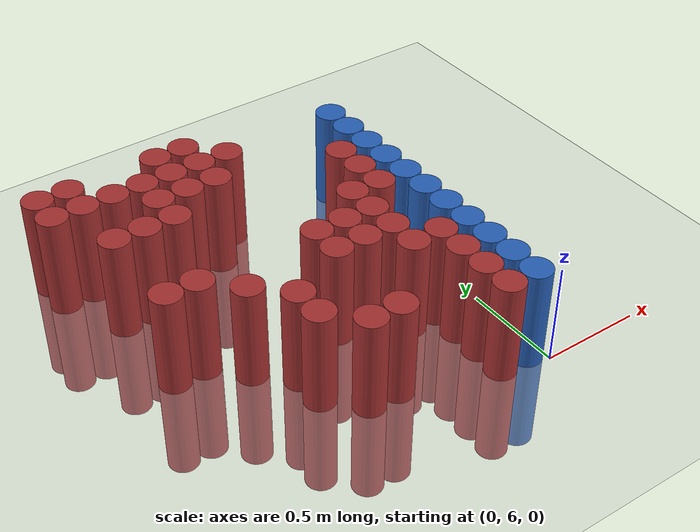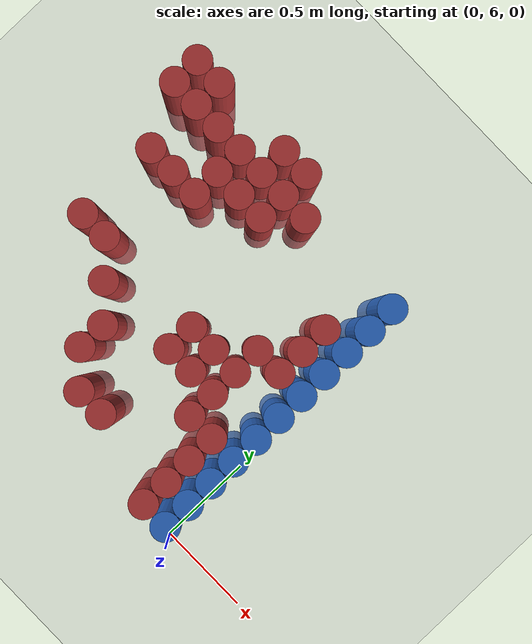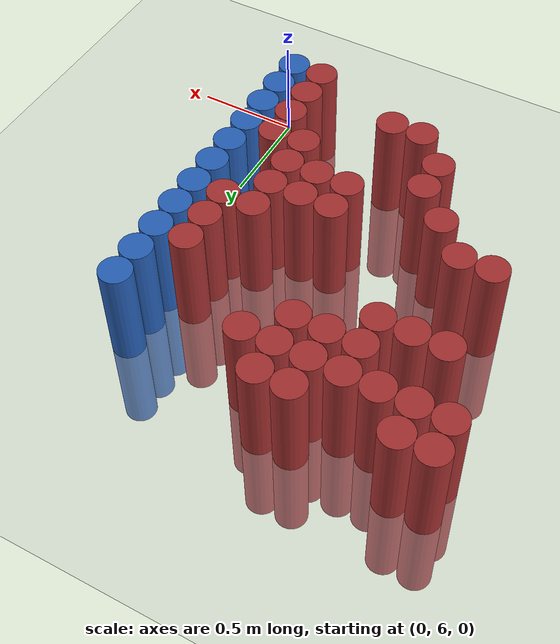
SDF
<sdf version="1.6">
 <world name="default">
  <model name="ground_plane">
   <static>1</static>
   <link name="link">
    <collision name="collision">
     <geometry><plane><normal>0 0 1</normal><size>100 100</size></plane></geometry>
     <surface><friction><ode><mu>100</mu><mu2>50</mu2></ode></friction></surface>
    </collision>
    <visual name="visual">
     <cast_shadows>0</cast_shadows>
     <geometry><plane><normal>0 0 1</normal><size>100 100</size></plane></geometry>
     <material>
      <script><uri>file://media/materials/scripts/gazebo.material</uri><name>Gazebo/Grey</name></script>
     </material>
    </visual>
   </link>
  </model>
  <model name="unit_cylinder_226">
   <static>1</static>
   <pose>-1.575000 7.575000 0.000000 0.000000 0.000000 0.000000</pose>
   <link name="link">
    <inertial>
     <mass>1</mass>
     <inertia><ixx>0.145833</ixx><ixy>0</ixy><ixz>0</ixz><iyy>0.145833</iyy><iyz>0</iyz><izz>0.125</izz></inertia>
    </inertial>
    <collision name="collision">
     <geometry><cylinder><radius>0.075000</radius><length>1</length></cylinder></geometry>
    </collision>
    <visual name="visual">
     <geometry><cylinder><radius>0.075000</radius><length>1</length></cylinder></geometry>
     <material>
      <ambient>0.648000 0.192000 0.192000 1</ambient>
      <diffuse>0.648000 0.192000 0.192000 1</diffuse>
     </material>
     <material>
      <script><name>Gazebo/Grey</name><uri>file://media/materials/scripts/gazebo.material</uri></script>
     </material>
    </visual>
   </link>
  </model>
  <model name="unit_cylinder_227">
   <static>1</static>
   <pose>-1.575000 7.725000 0.000000 0.000000 0.000000 0.000000</pose>
   <link name="link">
    <inertial>
     <mass>1</mass>
     <inertia><ixx>0.145833</ixx><ixy>0</ixy><ixz>0</ixz><iyy>0.145833</iyy><iyz>0</iyz><izz>0.125</izz></inertia>
    </inertial>
    <collision name="collision">
     <geometry><cylinder><radius>0.075000</radius><length>1</length></cylinder></geometry>
    </collision>
    <visual name="visual">
     <geometry><cylinder><radius>0.075000</radius><length>1</length></cylinder></geometry>
     <material>
      <ambient>0.648000 0.192000 0.192000 1</ambient>
      <diffuse>0.648000 0.192000 0.192000 1</diffuse>
     </material>
     <material>
      <script><name>Gazebo/Grey</name><uri>file://media/materials/scripts/gazebo.material</uri></script>
     </material>
    </visual>
   </link>
  </model>
  <model name="unit_cylinder_232">
   <static>1</static>
   <pose>-1.425000 6.825000 0.000000 0.000000 0.000000 0.000000</pose>
   <link name="link">
    <inertial>
     <mass>1</mass>
     <inertia><ixx>0.145833</ixx><ixy>0</ixy><ixz>0</ixz><iyy>0.145833</iyy><iyz>0</iyz><izz>0.125</izz></inertia>
    </inertial>
    <collision name="collision">
     <geometry><cylinder><radius>0.075000</radius><length>1</length></cylinder></geometry>
    </collision>
    <visual name="visual">
     <geometry><cylinder><radius>0.075000</radius><length>1</length></cylinder></geometry>
     <material>
      <ambient>0.648000 0.192000 0.192000 1</ambient>
      <diffuse>0.648000 0.192000 0.192000 1</diffuse>
     </material>
     <material>
      <script><name>Gazebo/Grey</name><uri>file://media/materials/scripts/gazebo.material</uri></script>
     </material>
    </visual>
   </link>
  </model>
  <model name="unit_cylinder_233">
   <static>1</static>
   <pose>-1.425000 7.275000 0.000000 0.000000 0.000000 0.000000</pose>
   <link name="link">
    <inertial>
     <mass>1</mass>
     <inertia><ixx>0.145833</ixx><ixy>0</ixy><ixz>0</ixz><iyy>0.145833</iyy><iyz>0</iyz><izz>0.125</izz></inertia>
    </inertial>
    <collision name="collision">
     <geometry><cylinder><radius>0.075000</radius><length>1</length></cylinder></geometry>
    </collision>
    <visual name="visual">
     <geometry><cylinder><radius>0.075000</radius><length>1</length></cylinder></geometry>
     <material>
      <ambient>0.648000 0.192000 0.192000 1</ambient>
      <diffuse>0.648000 0.192000 0.192000 1</diffuse>
     </material>
     <material>
      <script><name>Gazebo/Grey</name><uri>file://media/materials/scripts/gazebo.material</uri></script>
     </material>
    </visual>
   </link>
  </model>
  <model name="unit_cylinder_234">
   <static>1</static>
   <pose>-1.425000 7.575000 0.000000 0.000000 0.000000 0.000000</pose>
   <link name="link">
    <inertial>
     <mass>1</mass>
     <inertia><ixx>0.145833</ixx><ixy>0</ixy><ixz>0</ixz><iyy>0.145833</iyy><iyz>0</iyz><izz>0.125</izz></inertia>
    </inertial>
    <collision name="collision">
     <geometry><cylinder><radius>0.075000</radius><length>1</length></cylinder></geometry>
    </collision>
    <visual name="visual">
     <geometry><cylinder><radius>0.075000</radius><length>1</length></cylinder></geometry>
     <material>
      <ambient>0.648000 0.192000 0.192000 1</ambient>
      <diffuse>0.648000 0.192000 0.192000 1</diffuse>
     </material>
     <material>
      <script><name>Gazebo/Grey</name><uri>file://media/materials/scripts/gazebo.material</uri></script>
     </material>
    </visual>
   </link>
  </model>
  <model name="unit_cylinder_235">
   <static>1</static>
   <pose>-1.425000 7.725000 0.000000 0.000000 0.000000 0.000000</pose>
   <link name="link">
    <inertial>
     <mass>1</mass>
     <inertia><ixx>0.145833</ixx><ixy>0</ixy><ixz>0</ixz><iyy>0.145833</iyy><iyz>0</iyz><izz>0.125</izz></inertia>
    </inertial>
    <collision name="collision">
     <geometry><cylinder><radius>0.075000</radius><length>1</length></cylinder></geometry>
    </collision>
    <visual name="visual">
     <geometry><cylinder><radius>0.075000</radius><length>1</length></cylinder></geometry>
     <material>
      <ambient>0.648000 0.192000 0.192000 1</ambient>
      <diffuse>0.648000 0.192000 0.192000 1</diffuse>
     </material>
     <material>
      <script><name>Gazebo/Grey</name><uri>file://media/materials/scripts/gazebo.material</uri></script>
     </material>
    </visual>
   </link>
  </model>
  <model name="unit_cylinder_239">
   <static>1</static>
   <pose>-1.275000 6.825000 0.000000 0.000000 0.000000 0.000000</pose>
   <link name="link">
    <inertial>
     <mass>1</mass>
     <inertia><ixx>0.145833</ixx><ixy>0</ixy><ixz>0</ixz><iyy>0.145833</iyy><iyz>0</iyz><izz>0.125</izz></inertia>
    </inertial>
    <collision name="collision">
     <geometry><cylinder><radius>0.075000</radius><length>1</length></cylinder></geometry>
    </collision>
    <visual name="visual">
     <geometry><cylinder><radius>0.075000</radius><length>1</length></cylinder></geometry>
     <material>
      <ambient>0.648000 0.192000 0.192000 1</ambient>
      <diffuse>0.648000 0.192000 0.192000 1</diffuse>
     </material>
     <material>
      <script><name>Gazebo/Grey</name><uri>file://media/materials/scripts/gazebo.material</uri></script>
     </material>
    </visual>
   </link>
  </model>
  <model name="unit_cylinder_240">
   <static>1</static>
   <pose>-1.275000 7.275000 0.000000 0.000000 0.000000 0.000000</pose>
   <link name="link">
    <inertial>
     <mass>1</mass>
     <inertia><ixx>0.145833</ixx><ixy>0</ixy><ixz>0</ixz><iyy>0.145833</iyy><iyz>0</iyz><izz>0.125</izz></inertia>
    </inertial>
    <collision name="collision">
     <geometry><cylinder><radius>0.075000</radius><length>1</length></cylinder></geometry>
    </collision>
    <visual name="visual">
     <geometry><cylinder><radius>0.075000</radius><length>1</length></cylinder></geometry>
     <material>
      <ambient>0.648000 0.192000 0.192000 1</ambient>
      <diffuse>0.648000 0.192000 0.192000 1</diffuse>
     </material>
     <material>
      <script><name>Gazebo/Grey</name><uri>file://media/materials/scripts/gazebo.material</uri></script>
     </material>
    </visual>
   </link>
  </model>
  <model name="unit_cylinder_241">
   <static>1</static>
   <pose>-1.275000 7.575000 0.000000 0.000000 0.000000 0.000000</pose>
   <link name="link">
    <inertial>
     <mass>1</mass>
     <inertia><ixx>0.145833</ixx><ixy>0</ixy><ixz>0</ixz><iyy>0.145833</iyy><iyz>0</iyz><izz>0.125</izz></inertia>
    </inertial>
    <collision name="collision">
     <geometry><cylinder><radius>0.075000</radius><length>1</length></cylinder></geometry>
    </collision>
    <visual name="visual">
     <geometry><cylinder><radius>0.075000</radius><length>1</length></cylinder></geometry>
     <material>
      <ambient>0.648000 0.192000 0.192000 1</ambient>
      <diffuse>0.648000 0.192000 0.192000 1</diffuse>
     </material>
     <material>
      <script><name>Gazebo/Grey</name><uri>file://media/materials/scripts/gazebo.material</uri></script>
     </material>
    </visual>
   </link>
  </model>
  <model name="unit_cylinder_248">
   <static>1</static>
   <pose>-1.125000 6.675000 0.000000 0.000000 0.000000 0.000000</pose>
   <link name="link">
    <inertial>
     <mass>1</mass>
     <inertia><ixx>0.145833</ixx><ixy>0</ixy><ixz>0</ixz><iyy>0.145833</iyy><iyz>0</iyz><izz>0.125</izz></inertia>
    </inertial>
    <collision name="collision">
     <geometry><cylinder><radius>0.075000</radius><length>1</length></cylinder></geometry>
    </collision>
    <visual name="visual">
     <geometry><cylinder><radius>0.075000</radius><length>1</length></cylinder></geometry>
     <material>
      <ambient>0.648000 0.192000 0.192000 1</ambient>
      <diffuse>0.648000 0.192000 0.192000 1</diffuse>
     </material>
     <material>
      <script><name>Gazebo/Grey</name><uri>file://media/materials/scripts/gazebo.material</uri></script>
     </material>
    </visual>
   </link>
  </model>
  <model name="unit_cylinder_249">
   <static>1</static>
   <pose>-1.125000 7.275000 0.000000 0.000000 0.000000 0.000000</pose>
   <link name="link">
    <inertial>
     <mass>1</mass>
     <inertia><ixx>0.145833</ixx><ixy>0</ixy><ixz>0</ixz><iyy>0.145833</iyy><iyz>0</iyz><izz>0.125</izz></inertia>
    </inertial>
    <collision name="collision">
     <geometry><cylinder><radius>0.075000</radius><length>1</length></cylinder></geometry>
    </collision>
    <visual name="visual">
     <geometry><cylinder><radius>0.075000</radius><length>1</length></cylinder></geometry>
     <material>
      <ambient>0.648000 0.192000 0.192000 1</ambient>
      <diffuse>0.648000 0.192000 0.192000 1</diffuse>
     </material>
     <material>
      <script><name>Gazebo/Grey</name><uri>file://media/materials/scripts/gazebo.material</uri></script>
     </material>
    </visual>
   </link>
  </model>
  <model name="unit_cylinder_250">
   <static>1</static>
   <pose>-1.125000 7.425000 0.000000 0.000000 0.000000 0.000000</pose>
   <link name="link">
    <inertial>
     <mass>1</mass>
     <inertia><ixx>0.145833</ixx><ixy>0</ixy><ixz>0</ixz><iyy>0.145833</iyy><iyz>0</iyz><izz>0.125</izz></inertia>
    </inertial>
    <collision name="collision">
     <geometry><cylinder><radius>0.075000</radius><length>1</length></cylinder></geometry>
    </collision>
    <visual name="visual">
     <geometry><cylinder><radius>0.075000</radius><length>1</length></cylinder></geometry>
     <material>
      <ambient>0.648000 0.192000 0.192000 1</ambient>
      <diffuse>0.648000 0.192000 0.192000 1</diffuse>
     </material>
     <material>
      <script><name>Gazebo/Grey</name><uri>file://media/materials/scripts/gazebo.material</uri></script>
     </material>
    </visual>
   </link>
  </model>
  <model name="unit_cylinder_251">
   <static>1</static>
   <pose>-1.125000 7.575000 0.000000 0.000000 0.000000 0.000000</pose>
   <link name="link">
    <inertial>
     <mass>1</mass>
     <inertia><ixx>0.145833</ixx><ixy>0</ixy><ixz>0</ixz><iyy>0.145833</iyy><iyz>0</iyz><izz>0.125</izz></inertia>
    </inertial>
    <collision name="collision">
     <geometry><cylinder><radius>0.075000</radius><length>1</length></cylinder></geometry>
    </collision>
    <visual name="visual">
     <geometry><cylinder><radius>0.075000</radius><length>1</length></cylinder></geometry>
     <material>
      <ambient>0.648000 0.192000 0.192000 1</ambient>
      <diffuse>0.648000 0.192000 0.192000 1</diffuse>
     </material>
     <material>
      <script><name>Gazebo/Grey</name><uri>file://media/materials/scripts/gazebo.material</uri></script>
     </material>
    </visual>
   </link>
  </model>
  <model name="unit_cylinder_262">
   <static>1</static>
   <pose>-0.975000 6.375000 0.000000 0.000000 0.000000 0.000000</pose>
   <link name="link">
    <inertial>
     <mass>1</mass>
     <inertia><ixx>0.145833</ixx><ixy>0</ixy><ixz>0</ixz><iyy>0.145833</iyy><iyz>0</iyz><izz>0.125</izz></inertia>
    </inertial>
    <collision name="collision">
     <geometry><cylinder><radius>0.075000</radius><length>1</length></cylinder></geometry>
    </collision>
    <visual name="visual">
     <geometry><cylinder><radius>0.075000</radius><length>1</length></cylinder></geometry>
     <material>
      <ambient>0.648000 0.192000 0.192000 1</ambient>
      <diffuse>0.648000 0.192000 0.192000 1</diffuse>
     </material>
     <material>
      <script><name>Gazebo/Grey</name><uri>file://media/materials/scripts/gazebo.material</uri></script>
     </material>
    </visual>
   </link>
  </model>
  <model name="unit_cylinder_263">
   <static>1</static>
   <pose>-0.975000 6.525000 0.000000 0.000000 0.000000 0.000000</pose>
   <link name="link">
    <inertial>
     <mass>1</mass>
     <inertia><ixx>0.145833</ixx><ixy>0</ixy><ixz>0</ixz><iyy>0.145833</iyy><iyz>0</iyz><izz>0.125</izz></inertia>
    </inertial>
    <collision name="collision">
     <geometry><cylinder><radius>0.075000</radius><length>1</length></cylinder></geometry>
    </collision>
    <visual name="visual">
     <geometry><cylinder><radius>0.075000</radius><length>1</length></cylinder></geometry>
     <material>
      <ambient>0.648000 0.192000 0.192000 1</ambient>
      <diffuse>0.648000 0.192000 0.192000 1</diffuse>
     </material>
     <material>
      <script><name>Gazebo/Grey</name><uri>file://media/materials/scripts/gazebo.material</uri></script>
     </material>
    </visual>
   </link>
  </model>
  <model name="unit_cylinder_264">
   <static>1</static>
   <pose>-0.975000 7.425000 0.000000 0.000000 0.000000 0.000000</pose>
   <link name="link">
    <inertial>
     <mass>1</mass>
     <inertia><ixx>0.145833</ixx><ixy>0</ixy><ixz>0</ixz><iyy>0.145833</iyy><iyz>0</iyz><izz>0.125</izz></inertia>
    </inertial>
    <collision name="collision">
     <geometry><cylinder><radius>0.075000</radius><length>1</length></cylinder></geometry>
    </collision>
    <visual name="visual">
     <geometry><cylinder><radius>0.075000</radius><length>1</length></cylinder></geometry>
     <material>
      <ambient>0.648000 0.192000 0.192000 1</ambient>
      <diffuse>0.648000 0.192000 0.192000 1</diffuse>
     </material>
     <material>
      <script><name>Gazebo/Grey</name><uri>file://media/materials/scripts/gazebo.material</uri></script>
     </material>
    </visual>
   </link>
  </model>
  <model name="unit_cylinder_265">
   <static>1</static>
   <pose>-0.975000 7.575000 0.000000 0.000000 0.000000 0.000000</pose>
   <link name="link">
    <inertial>
     <mass>1</mass>
     <inertia><ixx>0.145833</ixx><ixy>0</ixy><ixz>0</ixz><iyy>0.145833</iyy><iyz>0</iyz><izz>0.125</izz></inertia>
    </inertial>
    <collision name="collision">
     <geometry><cylinder><radius>0.075000</radius><length>1</length></cylinder></geometry>
    </collision>
    <visual name="visual">
     <geometry><cylinder><radius>0.075000</radius><length>1</length></cylinder></geometry>
     <material>
      <ambient>0.648000 0.192000 0.192000 1</ambient>
      <diffuse>0.648000 0.192000 0.192000 1</diffuse>
     </material>
     <material>
      <script><name>Gazebo/Grey</name><uri>file://media/materials/scripts/gazebo.material</uri></script>
     </material>
    </visual>
   </link>
  </model>
  <model name="unit_cylinder_266">
   <static>1</static>
   <pose>-0.975000 7.725000 0.000000 0.000000 0.000000 0.000000</pose>
   <link name="link">
    <inertial>
     <mass>1</mass>
     <inertia><ixx>0.145833</ixx><ixy>0</ixy><ixz>0</ixz><iyy>0.145833</iyy><iyz>0</iyz><izz>0.125</izz></inertia>
    </inertial>
    <collision name="collision">
     <geometry><cylinder><radius>0.075000</radius><length>1</length></cylinder></geometry>
    </collision>
    <visual name="visual">
     <geometry><cylinder><radius>0.075000</radius><length>1</length></cylinder></geometry>
     <material>
      <ambient>0.648000 0.192000 0.192000 1</ambient>
      <diffuse>0.648000 0.192000 0.192000 1</diffuse>
     </material>
     <material>
      <script><name>Gazebo/Grey</name><uri>file://media/materials/scripts/gazebo.material</uri></script>
     </material>
    </visual>
   </link>
  </model>
  <model name="unit_cylinder_274">
   <static>1</static>
   <pose>-0.825000 6.225000 0.000000 0.000000 0.000000 0.000000</pose>
   <link name="link">
    <inertial>
     <mass>1</mass>
     <inertia><ixx>0.145833</ixx><ixy>0</ixy><ixz>0</ixz><iyy>0.145833</iyy><iyz>0</iyz><izz>0.125</izz></inertia>
    </inertial>
    <collision name="collision">
     <geometry><cylinder><radius>0.075000</radius><length>1</length></cylinder></geometry>
    </collision>
    <visual name="visual">
     <geometry><cylinder><radius>0.075000</radius><length>1</length></cylinder></geometry>
     <material>
      <ambient>0.648000 0.192000 0.192000 1</ambient>
      <diffuse>0.648000 0.192000 0.192000 1</diffuse>
     </material>
     <material>
      <script><name>Gazebo/Grey</name><uri>file://media/materials/scripts/gazebo.material</uri></script>
     </material>
    </visual>
   </link>
  </model>
  <model name="unit_cylinder_275">
   <static>1</static>
   <pose>-0.825000 7.425000 0.000000 0.000000 0.000000 0.000000</pose>
   <link name="link">
    <inertial>
     <mass>1</mass>
     <inertia><ixx>0.145833</ixx><ixy>0</ixy><ixz>0</ixz><iyy>0.145833</iyy><iyz>0</iyz><izz>0.125</izz></inertia>
    </inertial>
    <collision name="collision">
     <geometry><cylinder><radius>0.075000</radius><length>1</length></cylinder></geometry>
    </collision>
    <visual name="visual">
     <geometry><cylinder><radius>0.075000</radius><length>1</length></cylinder></geometry>
     <material>
      <ambient>0.648000 0.192000 0.192000 1</ambient>
      <diffuse>0.648000 0.192000 0.192000 1</diffuse>
     </material>
     <material>
      <script><name>Gazebo/Grey</name><uri>file://media/materials/scripts/gazebo.material</uri></script>
     </material>
    </visual>
   </link>
  </model>
  <model name="unit_cylinder_276">
   <static>1</static>
   <pose>-0.825000 7.575000 0.000000 0.000000 0.000000 0.000000</pose>
   <link name="link">
    <inertial>
     <mass>1</mass>
     <inertia><ixx>0.145833</ixx><ixy>0</ixy><ixz>0</ixz><iyy>0.145833</iyy><iyz>0</iyz><izz>0.125</izz></inertia>
    </inertial>
    <collision name="collision">
     <geometry><cylinder><radius>0.075000</radius><length>1</length></cylinder></geometry>
    </collision>
    <visual name="visual">
     <geometry><cylinder><radius>0.075000</radius><length>1</length></cylinder></geometry>
     <material>
      <ambient>0.648000 0.192000 0.192000 1</ambient>
      <diffuse>0.648000 0.192000 0.192000 1</diffuse>
     </material>
     <material>
      <script><name>Gazebo/Grey</name><uri>file://media/materials/scripts/gazebo.material</uri></script>
     </material>
    </visual>
   </link>
  </model>
  <model name="unit_cylinder_277">
   <static>1</static>
   <pose>-0.825000 7.725000 0.000000 0.000000 0.000000 0.000000</pose>
   <link name="link">
    <inertial>
     <mass>1</mass>
     <inertia><ixx>0.145833</ixx><ixy>0</ixy><ixz>0</ixz><iyy>0.145833</iyy><iyz>0</iyz><izz>0.125</izz></inertia>
    </inertial>
    <collision name="collision">
     <geometry><cylinder><radius>0.075000</radius><length>1</length></cylinder></geometry>
    </collision>
    <visual name="visual">
     <geometry><cylinder><radius>0.075000</radius><length>1</length></cylinder></geometry>
     <material>
      <ambient>0.648000 0.192000 0.192000 1</ambient>
      <diffuse>0.648000 0.192000 0.192000 1</diffuse>
     </material>
     <material>
      <script><name>Gazebo/Grey</name><uri>file://media/materials/scripts/gazebo.material</uri></script>
     </material>
    </visual>
   </link>
  </model>
  <model name="unit_cylinder_283">
   <static>1</static>
   <pose>-0.675000 6.225000 0.000000 0.000000 0.000000 0.000000</pose>
   <link name="link">
    <inertial>
     <mass>1</mass>
     <inertia><ixx>0.145833</ixx><ixy>0</ixy><ixz>0</ixz><iyy>0.145833</iyy><iyz>0</iyz><izz>0.125</izz></inertia>
    </inertial>
    <collision name="collision">
     <geometry><cylinder><radius>0.075000</radius><length>1</length></cylinder></geometry>
    </collision>
    <visual name="visual">
     <geometry><cylinder><radius>0.075000</radius><length>1</length></cylinder></geometry>
     <material>
      <ambient>0.648000 0.192000 0.192000 1</ambient>
      <diffuse>0.648000 0.192000 0.192000 1</diffuse>
     </material>
     <material>
      <script><name>Gazebo/Grey</name><uri>file://media/materials/scripts/gazebo.material</uri></script>
     </material>
    </visual>
   </link>
  </model>
  <model name="unit_cylinder_284">
   <static>1</static>
   <pose>-0.675000 6.675000 0.000000 0.000000 0.000000 0.000000</pose>
   <link name="link">
    <inertial>
     <mass>1</mass>
     <inertia><ixx>0.145833</ixx><ixy>0</ixy><ixz>0</ixz><iyy>0.145833</iyy><iyz>0</iyz><izz>0.125</izz></inertia>
    </inertial>
    <collision name="collision">
     <geometry><cylinder><radius>0.075000</radius><length>1</length></cylinder></geometry>
    </collision>
    <visual name="visual">
     <geometry><cylinder><radius>0.075000</radius><length>1</length></cylinder></geometry>
     <material>
      <ambient>0.648000 0.192000 0.192000 1</ambient>
      <diffuse>0.648000 0.192000 0.192000 1</diffuse>
     </material>
     <material>
      <script><name>Gazebo/Grey</name><uri>file://media/materials/scripts/gazebo.material</uri></script>
     </material>
    </visual>
   </link>
  </model>
  <model name="unit_cylinder_285">
   <static>1</static>
   <pose>-0.675000 6.825000 0.000000 0.000000 0.000000 0.000000</pose>
   <link name="link">
    <inertial>
     <mass>1</mass>
     <inertia><ixx>0.145833</ixx><ixy>0</ixy><ixz>0</ixz><iyy>0.145833</iyy><iyz>0</iyz><izz>0.125</izz></inertia>
    </inertial>
    <collision name="collision">
     <geometry><cylinder><radius>0.075000</radius><length>1</length></cylinder></geometry>
    </collision>
    <visual name="visual">
     <geometry><cylinder><radius>0.075000</radius><length>1</length></cylinder></geometry>
     <material>
      <ambient>0.648000 0.192000 0.192000 1</ambient>
      <diffuse>0.648000 0.192000 0.192000 1</diffuse>
     </material>
     <material>
      <script><name>Gazebo/Grey</name><uri>file://media/materials/scripts/gazebo.material</uri></script>
     </material>
    </visual>
   </link>
  </model>
  <model name="unit_cylinder_286">
   <static>1</static>
   <pose>-0.675000 7.575000 0.000000 0.000000 0.000000 0.000000</pose>
   <link name="link">
    <inertial>
     <mass>1</mass>
     <inertia><ixx>0.145833</ixx><ixy>0</ixy><ixz>0</ixz><iyy>0.145833</iyy><iyz>0</iyz><izz>0.125</izz></inertia>
    </inertial>
    <collision name="collision">
     <geometry><cylinder><radius>0.075000</radius><length>1</length></cylinder></geometry>
    </collision>
    <visual name="visual">
     <geometry><cylinder><radius>0.075000</radius><length>1</length></cylinder></geometry>
     <material>
      <ambient>0.648000 0.192000 0.192000 1</ambient>
      <diffuse>0.648000 0.192000 0.192000 1</diffuse>
     </material>
     <material>
      <script><name>Gazebo/Grey</name><uri>file://media/materials/scripts/gazebo.material</uri></script>
     </material>
    </visual>
   </link>
  </model>
  <model name="unit_cylinder_290">
   <static>1</static>
   <pose>-0.525000 6.675000 0.000000 0.000000 0.000000 0.000000</pose>
   <link name="link">
    <inertial>
     <mass>1</mass>
     <inertia><ixx>0.145833</ixx><ixy>0</ixy><ixz>0</ixz><iyy>0.145833</iyy><iyz>0</iyz><izz>0.125</izz></inertia>
    </inertial>
    <collision name="collision">
     <geometry><cylinder><radius>0.075000</radius><length>1</length></cylinder></geometry>
    </collision>
    <visual name="visual">
     <geometry><cylinder><radius>0.075000</radius><length>1</length></cylinder></geometry>
     <material>
      <ambient>0.648000 0.192000 0.192000 1</ambient>
      <diffuse>0.648000 0.192000 0.192000 1</diffuse>
     </material>
     <material>
      <script><name>Gazebo/Grey</name><uri>file://media/materials/scripts/gazebo.material</uri></script>
     </material>
    </visual>
   </link>
  </model>
  <model name="unit_cylinder_291">
   <static>1</static>
   <pose>-0.525000 6.825000 0.000000 0.000000 0.000000 0.000000</pose>
   <link name="link">
    <inertial>
     <mass>1</mass>
     <inertia><ixx>0.145833</ixx><ixy>0</ixy><ixz>0</ixz><iyy>0.145833</iyy><iyz>0</iyz><izz>0.125</izz></inertia>
    </inertial>
    <collision name="collision">
     <geometry><cylinder><radius>0.075000</radius><length>1</length></cylinder></geometry>
    </collision>
    <visual name="visual">
     <geometry><cylinder><radius>0.075000</radius><length>1</length></cylinder></geometry>
     <material>
      <ambient>0.648000 0.192000 0.192000 1</ambient>
      <diffuse>0.648000 0.192000 0.192000 1</diffuse>
     </material>
     <material>
      <script><name>Gazebo/Grey</name><uri>file://media/materials/scripts/gazebo.material</uri></script>
     </material>
    </visual>
   </link>
  </model>
  <model name="unit_cylinder_292">
   <static>1</static>
   <pose>-0.375000 6.525000 0.000000 0.000000 0.000000 0.000000</pose>
   <link name="link">
    <inertial>
     <mass>1</mass>
     <inertia><ixx>0.145833</ixx><ixy>0</ixy><ixz>0</ixz><iyy>0.145833</iyy><iyz>0</iyz><izz>0.125</izz></inertia>
    </inertial>
    <collision name="collision">
     <geometry><cylinder><radius>0.075000</radius><length>1</length></cylinder></geometry>
    </collision>
    <visual name="visual">
     <geometry><cylinder><radius>0.075000</radius><length>1</length></cylinder></geometry>
     <material>
      <ambient>0.648000 0.192000 0.192000 1</ambient>
      <diffuse>0.648000 0.192000 0.192000 1</diffuse>
     </material>
     <material>
      <script><name>Gazebo/Grey</name><uri>file://media/materials/scripts/gazebo.material</uri></script>
     </material>
    </visual>
   </link>
  </model>
  <model name="unit_cylinder_293">
   <static>1</static>
   <pose>-0.375000 6.675000 0.000000 0.000000 0.000000 0.000000</pose>
   <link name="link">
    <inertial>
     <mass>1</mass>
     <inertia><ixx>0.145833</ixx><ixy>0</ixy><ixz>0</ixz><iyy>0.145833</iyy><iyz>0</iyz><izz>0.125</izz></inertia>
    </inertial>
    <collision name="collision">
     <geometry><cylinder><radius>0.075000</radius><length>1</length></cylinder></geometry>
    </collision>
    <visual name="visual">
     <geometry><cylinder><radius>0.075000</radius><length>1</length></cylinder></geometry>
     <material>
      <ambient>0.648000 0.192000 0.192000 1</ambient>
      <diffuse>0.648000 0.192000 0.192000 1</diffuse>
     </material>
     <material>
      <script><name>Gazebo/Grey</name><uri>file://media/materials/scripts/gazebo.material</uri></script>
     </material>
    </visual>
   </link>
  </model>
  <model name="unit_cylinder_294">
   <static>1</static>
   <pose>-0.375000 6.825000 0.000000 0.000000 0.000000 0.000000</pose>
   <link name="link">
    <inertial>
     <mass>1</mass>
     <inertia><ixx>0.145833</ixx><ixy>0</ixy><ixz>0</ixz><iyy>0.145833</iyy><iyz>0</iyz><izz>0.125</izz></inertia>
    </inertial>
    <collision name="collision">
     <geometry><cylinder><radius>0.075000</radius><length>1</length></cylinder></geometry>
    </collision>
    <visual name="visual">
     <geometry><cylinder><radius>0.075000</radius><length>1</length></cylinder></geometry>
     <material>
      <ambient>0.648000 0.192000 0.192000 1</ambient>
      <diffuse>0.648000 0.192000 0.192000 1</diffuse>
     </material>
     <material>
      <script><name>Gazebo/Grey</name><uri>file://media/materials/scripts/gazebo.material</uri></script>
     </material>
    </visual>
   </link>
  </model>
  <model name="unit_cylinder_295">
   <static>1</static>
   <pose>-0.375000 6.975000 0.000000 0.000000 0.000000 0.000000</pose>
   <link name="link">
    <inertial>
     <mass>1</mass>
     <inertia><ixx>0.145833</ixx><ixy>0</ixy><ixz>0</ixz><iyy>0.145833</iyy><iyz>0</iyz><izz>0.125</izz></inertia>
    </inertial>
    <collision name="collision">
     <geometry><cylinder><radius>0.075000</radius><length>1</length></cylinder></geometry>
    </collision>
    <visual name="visual">
     <geometry><cylinder><radius>0.075000</radius><length>1</length></cylinder></geometry>
     <material>
      <ambient>0.648000 0.192000 0.192000 1</ambient>
      <diffuse>0.648000 0.192000 0.192000 1</diffuse>
     </material>
     <material>
      <script><name>Gazebo/Grey</name><uri>file://media/materials/scripts/gazebo.material</uri></script>
     </material>
    </visual>
   </link>
  </model>
  <model name="unit_cylinder_304">
   <static>1</static>
   <pose>-0.225000 6.075000 0.000000 0.000000 0.000000 0.000000</pose>
   <link name="link">
    <inertial>
     <mass>1</mass>
     <inertia><ixx>0.145833</ixx><ixy>0</ixy><ixz>0</ixz><iyy>0.145833</iyy><iyz>0</iyz><izz>0.125</izz></inertia>
    </inertial>
    <collision name="collision">
     <geometry><cylinder><radius>0.075000</radius><length>1</length></cylinder></geometry>
    </collision>
    <visual name="visual">
     <geometry><cylinder><radius>0.075000</radius><length>1</length></cylinder></geometry>
     <material>
      <ambient>0.648000 0.192000 0.192000 1</ambient>
      <diffuse>0.648000 0.192000 0.192000 1</diffuse>
     </material>
     <material>
      <script><name>Gazebo/Grey</name><uri>file://media/materials/scripts/gazebo.material</uri></script>
     </material>
    </visual>
   </link>
  </model>
  <model name="unit_cylinder_305">
   <static>1</static>
   <pose>-0.225000 6.225000 0.000000 0.000000 0.000000 0.000000</pose>
   <link name="link">
    <inertial>
     <mass>1</mass>
     <inertia><ixx>0.145833</ixx><ixy>0</ixy><ixz>0</ixz><iyy>0.145833</iyy><iyz>0</iyz><izz>0.125</izz></inertia>
    </inertial>
    <collision name="collision">
     <geometry><cylinder><radius>0.075000</radius><length>1</length></cylinder></geometry>
    </collision>
    <visual name="visual">
     <geometry><cylinder><radius>0.075000</radius><length>1</length></cylinder></geometry>
     <material>
      <ambient>0.648000 0.192000 0.192000 1</ambient>
      <diffuse>0.648000 0.192000 0.192000 1</diffuse>
     </material>
     <material>
      <script><name>Gazebo/Grey</name><uri>file://media/materials/scripts/gazebo.material</uri></script>
     </material>
    </visual>
   </link>
  </model>
  <model name="unit_cylinder_306">
   <static>1</static>
   <pose>-0.225000 6.375000 0.000000 0.000000 0.000000 0.000000</pose>
   <link name="link">
    <inertial>
     <mass>1</mass>
     <inertia><ixx>0.145833</ixx><ixy>0</ixy><ixz>0</ixz><iyy>0.145833</iyy><iyz>0</iyz><izz>0.125</izz></inertia>
    </inertial>
    <collision name="collision">
     <geometry><cylinder><radius>0.075000</radius><length>1</length></cylinder></geometry>
    </collision>
    <visual name="visual">
     <geometry><cylinder><radius>0.075000</radius><length>1</length></cylinder></geometry>
     <material>
      <ambient>0.648000 0.192000 0.192000 1</ambient>
      <diffuse>0.648000 0.192000 0.192000 1</diffuse>
     </material>
     <material>
      <script><name>Gazebo/Grey</name><uri>file://media/materials/scripts/gazebo.material</uri></script>
     </material>
    </visual>
   </link>
  </model>
  <model name="unit_cylinder_307">
   <static>1</static>
   <pose>-0.225000 6.525000 0.000000 0.000000 0.000000 0.000000</pose>
   <link name="link">
    <inertial>
     <mass>1</mass>
     <inertia><ixx>0.145833</ixx><ixy>0</ixy><ixz>0</ixz><iyy>0.145833</iyy><iyz>0</iyz><izz>0.125</izz></inertia>
    </inertial>
    <collision name="collision">
     <geometry><cylinder><radius>0.075000</radius><length>1</length></cylinder></geometry>
    </collision>
    <visual name="visual">
     <geometry><cylinder><radius>0.075000</radius><length>1</length></cylinder></geometry>
     <material>
      <ambient>0.648000 0.192000 0.192000 1</ambient>
      <diffuse>0.648000 0.192000 0.192000 1</diffuse>
     </material>
     <material>
      <script><name>Gazebo/Grey</name><uri>file://media/materials/scripts/gazebo.material</uri></script>
     </material>
    </visual>
   </link>
  </model>
  <model name="unit_cylinder_308">
   <static>1</static>
   <pose>-0.225000 6.975000 0.000000 0.000000 0.000000 0.000000</pose>
   <link name="link">
    <inertial>
     <mass>1</mass>
     <inertia><ixx>0.145833</ixx><ixy>0</ixy><ixz>0</ixz><iyy>0.145833</iyy><iyz>0</iyz><izz>0.125</izz></inertia>
    </inertial>
    <collision name="collision">
     <geometry><cylinder><radius>0.075000</radius><length>1</length></cylinder></geometry>
    </collision>
    <visual name="visual">
     <geometry><cylinder><radius>0.075000</radius><length>1</length></cylinder></geometry>
     <material>
      <ambient>0.648000 0.192000 0.192000 1</ambient>
      <diffuse>0.648000 0.192000 0.192000 1</diffuse>
     </material>
     <material>
      <script><name>Gazebo/Grey</name><uri>file://media/materials/scripts/gazebo.material</uri></script>
     </material>
    </visual>
   </link>
  </model>
  <model name="unit_cylinder_309">
   <static>1</static>
   <pose>-0.225000 7.125000 0.000000 0.000000 0.000000 0.000000</pose>
   <link name="link">
    <inertial>
     <mass>1</mass>
     <inertia><ixx>0.145833</ixx><ixy>0</ixy><ixz>0</ixz><iyy>0.145833</iyy><iyz>0</iyz><izz>0.125</izz></inertia>
    </inertial>
    <collision name="collision">
     <geometry><cylinder><radius>0.075000</radius><length>1</length></cylinder></geometry>
    </collision>
    <visual name="visual">
     <geometry><cylinder><radius>0.075000</radius><length>1</length></cylinder></geometry>
     <material>
      <ambient>0.648000 0.192000 0.192000 1</ambient>
      <diffuse>0.648000 0.192000 0.192000 1</diffuse>
     </material>
     <material>
      <script><name>Gazebo/Grey</name><uri>file://media/materials/scripts/gazebo.material</uri></script>
     </material>
    </visual>
   </link>
  </model>
  <model name="unit_cylinder_310">
   <static>1</static>
   <pose>-0.225000 7.275000 0.000000 0.000000 0.000000 0.000000</pose>
   <link name="link">
    <inertial>
     <mass>1</mass>
     <inertia><ixx>0.145833</ixx><ixy>0</ixy><ixz>0</ixz><iyy>0.145833</iyy><iyz>0</iyz><izz>0.125</izz></inertia>
    </inertial>
    <collision name="collision">
     <geometry><cylinder><radius>0.075000</radius><length>1</length></cylinder></geometry>
    </collision>
    <visual name="visual">
     <geometry><cylinder><radius>0.075000</radius><length>1</length></cylinder></geometry>
     <material>
      <ambient>0.648000 0.192000 0.192000 1</ambient>
      <diffuse>0.648000 0.192000 0.192000 1</diffuse>
     </material>
     <material>
      <script><name>Gazebo/Grey</name><uri>file://media/materials/scripts/gazebo.material</uri></script>
     </material>
    </visual>
   </link>
  </model>
  <model name="unit_cylinder_326">
   <static>1</static>
   <pose>-0.075000 6.075000 0.000000 0.000000 0.000000 0.000000</pose>
   <link name="link">
    <inertial>
     <mass>1</mass>
     <inertia><ixx>0.145833</ixx><ixy>0</ixy><ixz>0</ixz><iyy>0.145833</iyy><iyz>0</iyz><izz>0.125</izz></inertia>
    </inertial>
    <collision name="collision">
     <geometry><cylinder><radius>0.075000</radius><length>1</length></cylinder></geometry>
    </collision>
    <visual name="visual">
     <geometry><cylinder><radius>0.075000</radius><length>1</length></cylinder></geometry>
     <material>
      <ambient>0.152000 0.379000 0.720000 1</ambient>
      <diffuse>0.152000 0.379000 0.720000 1</diffuse>
     </material>
     <material>
      <script><name>Gazebo/Grey</name><uri>file://media/materials/scripts/gazebo.material</uri></script>
     </material>
    </visual>
   </link>
  </model>
  <model name="unit_cylinder_327">
   <static>1</static>
   <pose>-0.075000 6.225000 0.000000 0.000000 0.000000 0.000000</pose>
   <link name="link">
    <inertial>
     <mass>1</mass>
     <inertia><ixx>0.145833</ixx><ixy>0</ixy><ixz>0</ixz><iyy>0.145833</iyy><iyz>0</iyz><izz>0.125</izz></inertia>
    </inertial>
    <collision name="collision">
     <geometry><cylinder><radius>0.075000</radius><length>1</length></cylinder></geometry>
    </collision>
    <visual name="visual">
     <geometry><cylinder><radius>0.075000</radius><length>1</length></cylinder></geometry>
     <material>
      <ambient>0.152000 0.379000 0.720000 1</ambient>
      <diffuse>0.152000 0.379000 0.720000 1</diffuse>
     </material>
     <material>
      <script><name>Gazebo/Grey</name><uri>file://media/materials/scripts/gazebo.material</uri></script>
     </material>
    </visual>
   </link>
  </model>
  <model name="unit_cylinder_328">
   <static>1</static>
   <pose>-0.075000 6.375000 0.000000 0.000000 0.000000 0.000000</pose>
   <link name="link">
    <inertial>
     <mass>1</mass>
     <inertia><ixx>0.145833</ixx><ixy>0</ixy><ixz>0</ixz><iyy>0.145833</iyy><iyz>0</iyz><izz>0.125</izz></inertia>
    </inertial>
    <collision name="collision">
     <geometry><cylinder><radius>0.075000</radius><length>1</length></cylinder></geometry>
    </collision>
    <visual name="visual">
     <geometry><cylinder><radius>0.075000</radius><length>1</length></cylinder></geometry>
     <material>
      <ambient>0.152000 0.379000 0.720000 1</ambient>
      <diffuse>0.152000 0.379000 0.720000 1</diffuse>
     </material>
     <material>
      <script><name>Gazebo/Grey</name><uri>file://media/materials/scripts/gazebo.material</uri></script>
     </material>
    </visual>
   </link>
  </model>
  <model name="unit_cylinder_329">
   <static>1</static>
   <pose>-0.075000 6.525000 0.000000 0.000000 0.000000 0.000000</pose>
   <link name="link">
    <inertial>
     <mass>1</mass>
     <inertia><ixx>0.145833</ixx><ixy>0</ixy><ixz>0</ixz><iyy>0.145833</iyy><iyz>0</iyz><izz>0.125</izz></inertia>
    </inertial>
    <collision name="collision">
     <geometry><cylinder><radius>0.075000</radius><length>1</length></cylinder></geometry>
    </collision>
    <visual name="visual">
     <geometry><cylinder><radius>0.075000</radius><length>1</length></cylinder></geometry>
     <material>
      <ambient>0.152000 0.379000 0.720000 1</ambient>
      <diffuse>0.152000 0.379000 0.720000 1</diffuse>
     </material>
     <material>
      <script><name>Gazebo/Grey</name><uri>file://media/materials/scripts/gazebo.material</uri></script>
     </material>
    </visual>
   </link>
  </model>
  <model name="unit_cylinder_330">
   <static>1</static>
   <pose>-0.075000 6.675000 0.000000 0.000000 0.000000 0.000000</pose>
   <link name="link">
    <inertial>
     <mass>1</mass>
     <inertia><ixx>0.145833</ixx><ixy>0</ixy><ixz>0</ixz><iyy>0.145833</iyy><iyz>0</iyz><izz>0.125</izz></inertia>
    </inertial>
    <collision name="collision">
     <geometry><cylinder><radius>0.075000</radius><length>1</length></cylinder></geometry>
    </collision>
    <visual name="visual">
     <geometry><cylinder><radius>0.075000</radius><length>1</length></cylinder></geometry>
     <material>
      <ambient>0.152000 0.379000 0.720000 1</ambient>
      <diffuse>0.152000 0.379000 0.720000 1</diffuse>
     </material>
     <material>
      <script><name>Gazebo/Grey</name><uri>file://media/materials/scripts/gazebo.material</uri></script>
     </material>
    </visual>
   </link>
  </model>
  <model name="unit_cylinder_331">
   <static>1</static>
   <pose>-0.075000 6.825000 0.000000 0.000000 0.000000 0.000000</pose>
   <link name="link">
    <inertial>
     <mass>1</mass>
     <inertia><ixx>0.145833</ixx><ixy>0</ixy><ixz>0</ixz><iyy>0.145833</iyy><iyz>0</iyz><izz>0.125</izz></inertia>
    </inertial>
    <collision name="collision">
     <geometry><cylinder><radius>0.075000</radius><length>1</length></cylinder></geometry>
    </collision>
    <visual name="visual">
     <geometry><cylinder><radius>0.075000</radius><length>1</length></cylinder></geometry>
     <material>
      <ambient>0.152000 0.379000 0.720000 1</ambient>
      <diffuse>0.152000 0.379000 0.720000 1</diffuse>
     </material>
     <material>
      <script><name>Gazebo/Grey</name><uri>file://media/materials/scripts/gazebo.material</uri></script>
     </material>
    </visual>
   </link>
  </model>
  <model name="unit_cylinder_332">
   <static>1</static>
   <pose>-0.075000 6.975000 0.000000 0.000000 0.000000 0.000000</pose>
   <link name="link">
    <inertial>
     <mass>1</mass>
     <inertia><ixx>0.145833</ixx><ixy>0</ixy><ixz>0</ixz><iyy>0.145833</iyy><iyz>0</iyz><izz>0.125</izz></inertia>
    </inertial>
    <collision name="collision">
     <geometry><cylinder><radius>0.075000</radius><length>1</length></cylinder></geometry>
    </collision>
    <visual name="visual">
     <geometry><cylinder><radius>0.075000</radius><length>1</length></cylinder></geometry>
     <material>
      <ambient>0.152000 0.379000 0.720000 1</ambient>
      <diffuse>0.152000 0.379000 0.720000 1</diffuse>
     </material>
     <material>
      <script><name>Gazebo/Grey</name><uri>file://media/materials/scripts/gazebo.material</uri></script>
     </material>
    </visual>
   </link>
  </model>
  <model name="unit_cylinder_333">
   <static>1</static>
   <pose>-0.075000 7.125000 0.000000 0.000000 0.000000 0.000000</pose>
   <link name="link">
    <inertial>
     <mass>1</mass>
     <inertia><ixx>0.145833</ixx><ixy>0</ixy><ixz>0</ixz><iyy>0.145833</iyy><iyz>0</iyz><izz>0.125</izz></inertia>
    </inertial>
    <collision name="collision">
     <geometry><cylinder><radius>0.075000</radius><length>1</length></cylinder></geometry>
    </collision>
    <visual name="visual">
     <geometry><cylinder><radius>0.075000</radius><length>1</length></cylinder></geometry>
     <material>
      <ambient>0.152000 0.379000 0.720000 1</ambient>
      <diffuse>0.152000 0.379000 0.720000 1</diffuse>
     </material>
     <material>
      <script><name>Gazebo/Grey</name><uri>file://media/materials/scripts/gazebo.material</uri></script>
     </material>
    </visual>
   </link>
  </model>
  <model name="unit_cylinder_334">
   <static>1</static>
   <pose>-0.075000 7.275000 0.000000 0.000000 0.000000 0.000000</pose>
   <link name="link">
    <inertial>
     <mass>1</mass>
     <inertia><ixx>0.145833</ixx><ixy>0</ixy><ixz>0</ixz><iyy>0.145833</iyy><iyz>0</iyz><izz>0.125</izz></inertia>
    </inertial>
    <collision name="collision">
     <geometry><cylinder><radius>0.075000</radius><length>1</length></cylinder></geometry>
    </collision>
    <visual name="visual">
     <geometry><cylinder><radius>0.075000</radius><length>1</length></cylinder></geometry>
     <material>
      <ambient>0.152000 0.379000 0.720000 1</ambient>
      <diffuse>0.152000 0.379000 0.720000 1</diffuse>
     </material>
     <material>
      <script><name>Gazebo/Grey</name><uri>file://media/materials/scripts/gazebo.material</uri></script>
     </material>
    </visual>
   </link>
  </model>
  <model name="unit_cylinder_335">
   <static>1</static>
   <pose>-0.075000 7.425000 0.000000 0.000000 0.000000 0.000000</pose>
   <link name="link">
    <inertial>
     <mass>1</mass>
     <inertia><ixx>0.145833</ixx><ixy>0</ixy><ixz>0</ixz><iyy>0.145833</iyy><iyz>0</iyz><izz>0.125</izz></inertia>
    </inertial>
    <collision name="collision">
     <geometry><cylinder><radius>0.075000</radius><length>1</length></cylinder></geometry>
    </collision>
    <visual name="visual">
     <geometry><cylinder><radius>0.075000</radius><length>1</length></cylinder></geometry>
     <material>
      <ambient>0.152000 0.379000 0.720000 1</ambient>
      <diffuse>0.152000 0.379000 0.720000 1</diffuse>
     </material>
     <material>
      <script><name>Gazebo/Grey</name><uri>file://media/materials/scripts/gazebo.material</uri></script>
     </material>
    </visual>
   </link>
  </model>
  <model name="unit_cylinder_336">
   <static>1</static>
   <pose>-0.075000 7.575000 0.000000 0.000000 0.000000 0.000000</pose>
   <link name="link">
    <inertial>
     <mass>1</mass>
     <inertia><ixx>0.145833</ixx><ixy>0</ixy><ixz>0</ixz><iyy>0.145833</iyy><iyz>0</iyz><izz>0.125</izz></inertia>
    </inertial>
    <collision name="collision">
     <geometry><cylinder><radius>0.075000</radius><length>1</length></cylinder></geometry>
    </collision>
    <visual name="visual">
     <geometry><cylinder><radius>0.075000</radius><length>1</length></cylinder></geometry>
     <material>
      <ambient>0.152000 0.379000 0.720000 1</ambient>
      <diffuse>0.152000 0.379000 0.720000 1</diffuse>
     </material>
     <material>
      <script><name>Gazebo/Grey</name><uri>file://media/materials/scripts/gazebo.material</uri></script>
     </material>
    </visual>
   </link>
  </model>
 </world>
</sdf>
